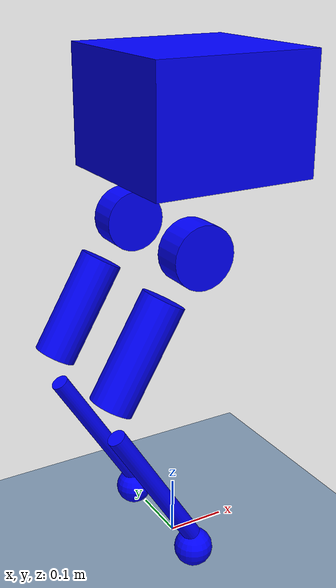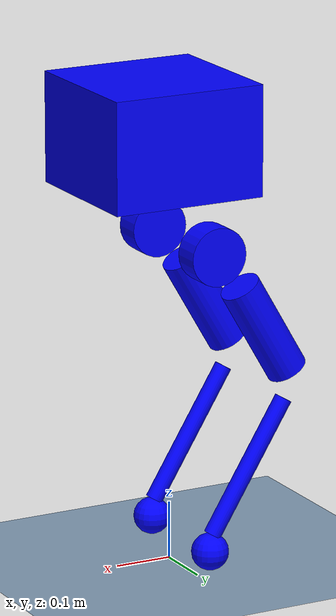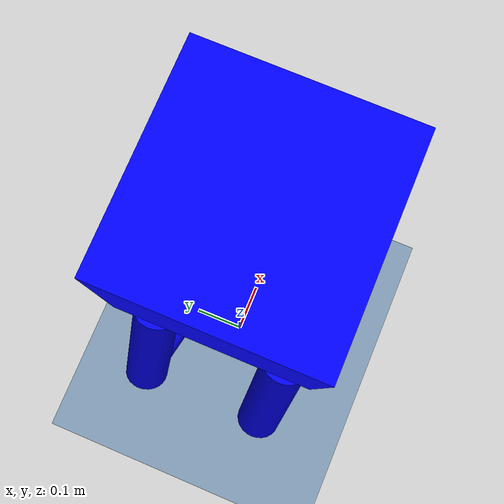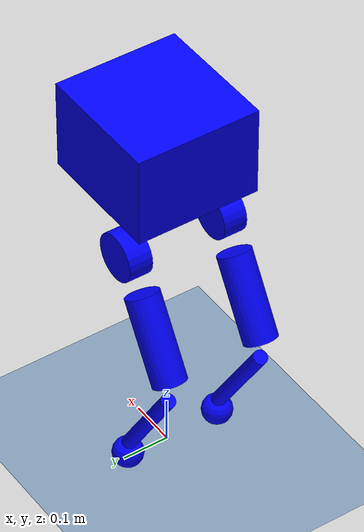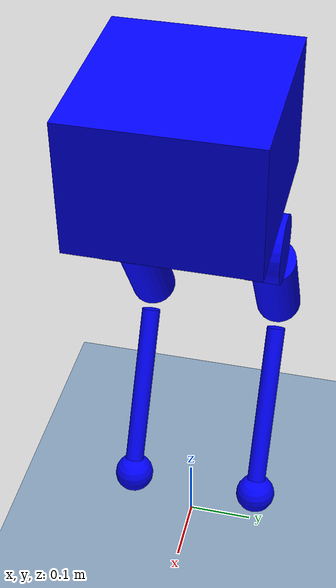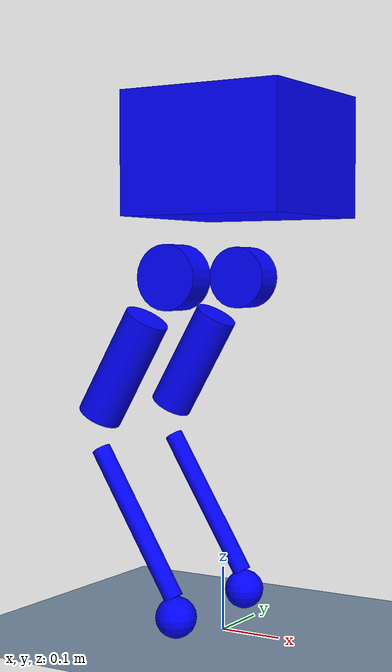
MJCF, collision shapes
<mujoco model="limx_tron1_pf_scene">
  <include file="../model/robot.xml"/>
  <compiler meshdir="../model/assets"/>

  <statistic center="0 0 0.1" extent="1.0"/>
  <visual>
    <headlight diffuse="0.82 0.86 0.9" ambient="0.42 0.48 0.54" specular="0.15 0.15 0.18"/>
    <global azimuth="120" elevation="-20"/>
  </visual>
  <asset>
    <texture type="skybox" builtin="gradient" rgb1="0.3 0.5 0.7" rgb2="0 0 0" width="512" height="3072"/>
    <texture type="2d" name="groundplane" builtin="checker" mark="edge" rgb1="0.28 0.38 0.46" rgb2="0.16 0.23 0.30" markrgb="0.56 0.64 0.70" width="300" height="300"/>
    <material name="groundplane" texture="groundplane" texuniform="true" texrepeat="5 5" reflectance="0.2"/>
  </asset>
  <worldbody>
    <light pos="0 0 3" dir="0 0 -1" directional="true"/>
    <geom name="floor" size="0 0 0.05" type="plane" material="groundplane" friction="0.8 0.02 0.01"/>
  </worldbody>
</mujoco>

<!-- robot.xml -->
<mujoco model="point_foot">
    <compiler angle="radian" meshdir="assets" />
  <!-- timestep 不在此声明：运行时统一取 contract.json control.physics_hz -->
  <option gravity="0 0 -9.81" integrator="implicitfast" cone="elliptic" impratio="100" />
    <size njmax="500" nconmax="100" />

    <default>
        <light castshadow="false" diffuse="1 1 1" />
        <camera fovy="60"/>
        <default class="visual">
            <geom contype="0" conaffinity="0" group="1" type="mesh" rgba="0.9 0.9 0.9 1.0"/>
        </default>
        <joint armature="0.01" damping="0.01"/>
        <geom contype="1" conaffinity="1" condim="3" friction="0.6 0.005 0.0001" rgba="0.5 0.6 0.7 0.0" margin="0.001" group="0" />
    </default>
    <visual>
        <rgba com="0.502 1.0 0 0.5" contactpoint="1.0 1.0 0.6 0.4" contactforce="0.2 0.98 0.2 0.8"/>
        <scale com="0.2" forcewidth="0.05" contactwidth="0.10" contactheight="0.04"/>
    </visual>

    <asset>
        <mesh name="base_Link" file="base_Link.STL" />
        <mesh name="abad_L_Link" file="abad_L_Link.STL" />
        <mesh name="hip_L_Link" file="hip_L_Link.STL" />
        <mesh name="knee_L_Link" file="knee_L_Link.STL" />
        <mesh name="foot_L_Link" file="foot_L_Link.STL" />
        <mesh name="abad_R_Link" file="abad_R_Link.STL" />
        <mesh name="hip_R_Link" file="hip_R_Link.STL" />
        <mesh name="knee_R_Link" file="knee_R_Link.STL" />
        <mesh name="foot_R_Link" file="foot_R_Link.STL" />
    </asset>

    <asset>
        <texture type='skybox' builtin='gradient' width='512' height='512' rgb1="1.0 1.0 1.0" rgb2="1.0 1.0 1.0"/>
        <texture name="texplane" type="2d" builtin="checker" rgb1="0.35 0.35 0.35" rgb2="0.55 0.55 0.55" width="512" height="512" mark="cross" markrgb=".8 .8 .8"/>
        <material name="matplane" reflectance="0.0" texture="texplane" texrepeat="1 1" texuniform="true"/>
    </asset>

    <worldbody>
        <camera name="track" mode="trackcom" pos="0 -2.3 1.6" xyaxes="1 0 0 0 0.707 0.707"/>
        <light directional="true" diffuse=".8 .8 .8" pos="0 0 10" dir="0 0 -10"/>

        <body name="base_Link" pos="0 0 0.82">
            <inertial pos="0.0457123 0.000139854 -0.163809" quat="0.972578 -0.00615364 -0.232461 0.00398682" mass="9.595" diaginertia="0.154712 0.11093 0.0846371" />
            <joint type="free" limited="false" damping="0.0000" stiffness="0.0000" armature="0"/>
            <site name="imu" pos="0 0 0"/>
            <geom class="visual" rgba="0.79216 0.81961 0.93333 1" mesh="base_Link" />
            <geom name="base_collision" size="0.135 0.13 0.095" pos="0.03 0 -0.072" type="box" rgba="0 0 1 0" />

            <body name="abad_L_Link" pos="0.05556 0.105 -0.2602">
                <inertial pos="-0.06977 0.04479 0.00057" quat="0.595024 0.579772 0.394141 0.393019" mass="1.469" diaginertia="0.00252289 0.00208104 0.00139163" />
                <joint name="abad_L_Joint" pos="0 0 0" axis="1 0 0" limited="true" range="-0.38397 1.39626" armature="0.01" frictionloss="0" />
                <geom class="visual" rgba="0.79216 0.81961 0.93333 1" mesh="abad_L_Link" />
                <geom name="abad_L_collision" type="cylinder" pos="-0.08 0 0" euler="1.57 0 0" size="0.05 0.025" rgba="0 0 1 0" />

                <body name="hip_L_Link" pos="-0.077 0.0205 0">
                    <inertial pos="-0.02869 -0.0477 -0.03992" quat="0.853885 0.192797 0.226903 0.426877" mass="2.3" diaginertia="0.0233264 0.0230229 0.00277548" />
                    <joint name="hip_L_Joint" pos="0 0 0" axis="0 1 0" limited="true" range="-1.01229 1.39626" armature="0.01" frictionloss="0" />
                    <geom class="visual" rgba="1 1 1 1" mesh="hip_L_Link" />
                    <geom name="hip_L_collision" type="cylinder" pos="-0.1 -0.02 -0.14" euler="0 0.53 0" size="0.035 0.09" rgba="0 0 1 0" />

                    <body name="knee_L_Link" pos="-0.15 -0.0205 -0.25981">
                        <inertial pos="0.05168 0.00152 -0.08148" quat="0.668191 -0.202995 -0.19946 0.687408" mass="0.55" diaginertia="0.00419956 0.00414131 0.000138393" />
                        <joint name="knee_L_Joint" pos="0 0 0" axis="0 -1 0" limited="true" range="-0.872665 1.36136" armature="0.01" frictionloss="0" />
                        <geom class="visual" rgba="0.79216 0.81961 0.93333 1" mesh="knee_L_Link" />
                        <geom name="knee_L_collision" type="cylinder" pos="0.078 0 -0.12" euler="0 -0.55 0" size="0.015 0.13" rgba ="0 0 1 0"/>

                        <geom class="visual" pos="0.150 0 -0.2598" rgba="0.26667 0.26667 0.26667 1" mesh="foot_L_Link" />
                        <geom name="foot_L_collision" type="sphere" pos="0.150 0 -0.2598" size="0.032" rgba="0 0 1 0" />
                    </body>
                </body>
            </body>

            <body name="abad_R_Link" pos="0.05556 -0.105 -0.2602">
                <inertial pos="-0.06977 -0.04479 0.00057" quat="0.393019 0.394141 0.579772 0.595024" mass="1.469" diaginertia="0.00252289 0.00208104 0.00139163" />
                <joint name="abad_R_Joint" pos="0 0 0" axis="1 0 0" limited="true" range="-1.39626 0.38397" armature="0.01" frictionloss="0" />
                <geom class="visual" rgba="0.79216 0.81961 0.93333 1" mesh="abad_R_Link" />
                <geom name="abad_R_collision" type="cylinder" pos="-0.08 0 0" euler="1.57 0 0" size="0.05 0.025" rgba="0 0 1 0" />

                <body name="hip_R_Link" pos="-0.077 -0.0205 0">
                    <inertial pos="-0.02869 0.0477 -0.03992" quat="0.426877 0.226903 0.192797 0.853885" mass="2.3" diaginertia="0.0233264 0.0230229 0.00277548" />
                    <joint name="hip_R_Joint" pos="0 0 0" axis="0 -1 0" limited="true" range="-1.39626 1.01229" armature="0.01" frictionloss="0" />
                    <geom class="visual" rgba="1 1 1 1" mesh="hip_R_Link" />
                    <geom name="hip_R_collision" type="cylinder" pos="-0.10 0.025 -0.14" euler="0 0.53 0" size="0.035 0.09" rgba="0 0 1 0" />

                    <body name="knee_R_Link" pos="-0.15 0.0205 -0.25981">
                        <inertial pos="0.05168 -0.00152 -0.08148" quat="0.687408 -0.19946 -0.202995 0.668191" mass="0.55" diaginertia="0.00419956 0.00414131 0.000138393" />
                        <joint name="knee_R_Joint" pos="0 0 0" axis="0 1 0" limited="true" range="-1.36136 0.872665" armature="0.01" frictionloss="0" />
                        <geom class="visual" rgba="0.79216 0.81961 0.93333 1" mesh="knee_R_Link" />
                        <geom name="knee_R_collision" type="cylinder" pos="0.078 0 -0.12" euler="0 -0.55 0" size="0.015 0.13" rgba ="0 0 1 0"/>

                        <geom class="visual" pos="0.150 0 -0.2598" rgba="0.26667 0.26667 0.26667 1" mesh="foot_L_Link" />
                        <geom name="foot_R_collision" type="sphere" pos="0.150 0 -0.2598" size="0.032" rgba="0 0 1 0" />
                    </body>
                </body>
            </body>
        </body>
    </worldbody>

    <actuator>
                <position name="abad_L_Joint" joint="abad_L_Joint" kp="42" kv="2.5" forcerange="-80 80" forcelimited="true" />
                <position name="hip_L_Joint" joint="hip_L_Joint" kp="42" kv="2.5" forcerange="-80 80" forcelimited="true" />
                <position name="knee_L_Joint" joint="knee_L_Joint" kp="42" kv="2.5" forcerange="-80 80" forcelimited="true" />
                <position name="abad_R_Joint" joint="abad_R_Joint" kp="42" kv="2.5" forcerange="-80 80" forcelimited="true" />
                <position name="hip_R_Joint" joint="hip_R_Joint" kp="42" kv="2.5" forcerange="-80 80" forcelimited="true" />
                <position name="knee_R_Joint" joint="knee_R_Joint" kp="42" kv="2.5" forcerange="-80 80" forcelimited="true" />
    </actuator>

    <sensor>
        <framequat name="quat" objtype="site" objname="imu"/>
        <gyro name="gyro" site="imu"/>
        <accelerometer name="acc" site="imu"/>
        <jointpos name="abad_L_Joint"    joint="abad_L_Joint" />
        <jointpos name="hip_L_Joint"     joint="hip_L_Joint" />
        <jointpos name="knee_L_Joint"    joint="knee_L_Joint" />
        <jointpos name="abad_R_Joint"    joint="abad_R_Joint" />
        <jointpos name="hip_R_Joint"     joint="hip_R_Joint" />
        <jointpos name="knee_R_Joint"    joint="knee_R_Joint" />
    </sensor>

</mujoco>
